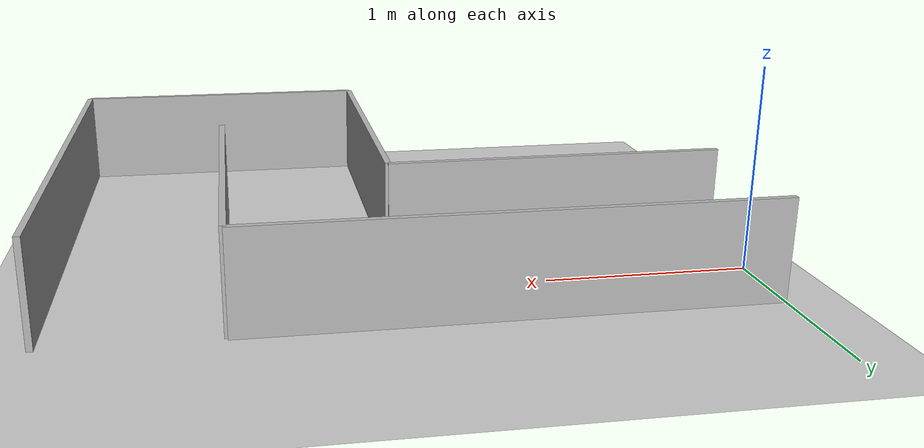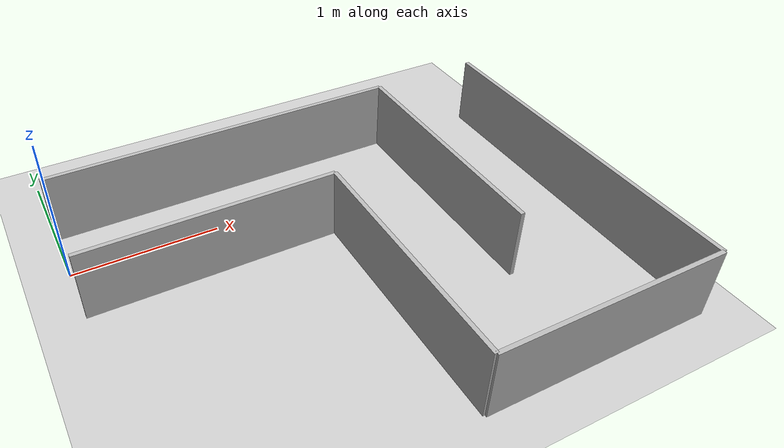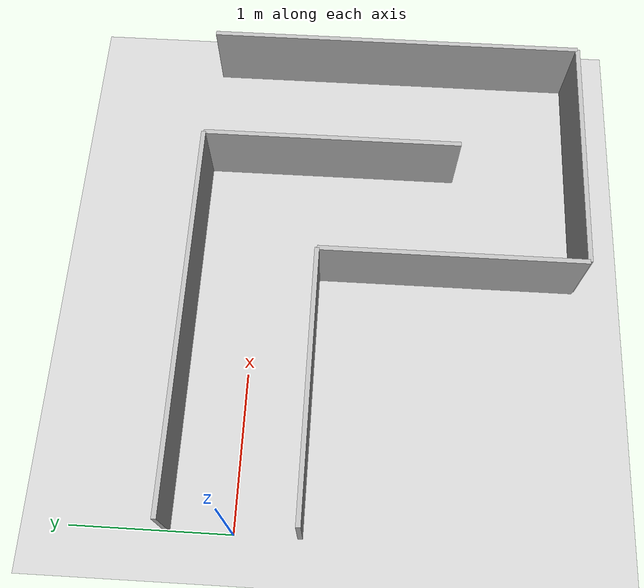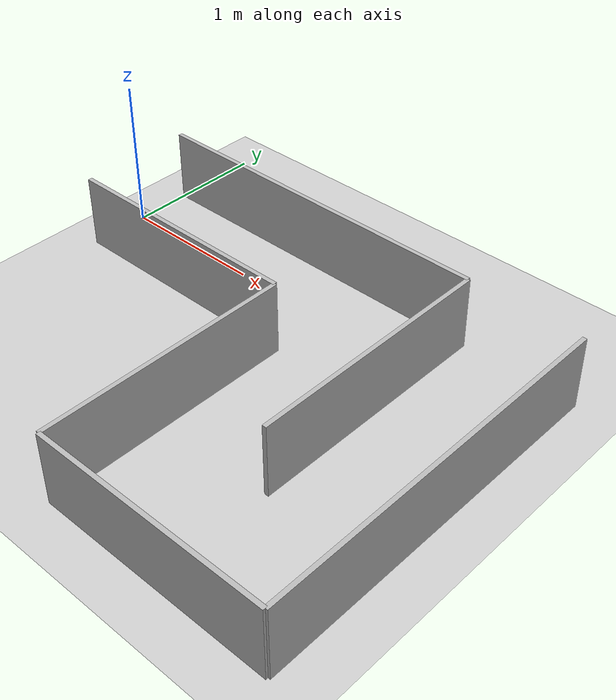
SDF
<?xml version="1.0" ?>
<sdf version="1.4">
    <world name="iitm_mini_project_nav_world">
        <include>
            <uri>model://ground_plane</uri>
        </include>

        <include>
            <uri>model://sun</uri>
        </include>

	<model name="walls">
		<static>true</static>
		<link name="wall_1">
			<pose>1.25 0.4 0.25 0 0 0</pose>
			<collision name="wall">
				<geometry>
					<box>
						<size>2.5 0.03 0.5</size>
					</box>
				</geometry>
			</collision>

			<visual name="visual">
				<geometry>
					<box>
						<size>2.5 0.03 0.5</size>
					</box>
				</geometry>
			</visual>
		</link>

		<link name="wall_2">
			<pose>0.85 -0.4 0.25 0 0 0</pose>
			<collision name="wall">
				<geometry>
					<box>
						<size>1.7 0.03 0.5</size>
					</box>
				</geometry>
			</collision>

			<visual name="visual">
				<geometry>
					<box>
						<size>1.7 0.03 0.5</size>
					</box>
				</geometry>
			</visual>
		</link>

		<link name="wall_3">
			<pose>2.5 -0.45 0.25 0 0 0</pose>
			<collision name="wall">
				<geometry>
					<box>
						<size>0.03 1.7 0.5</size>
					</box>
				</geometry>
			</collision>

			<visual name="visual">
				<geometry>
					<box>
						<size>0.03 1.7 0.5</size>
					</box>
				</geometry>
			</visual>
		</link>

		<link name="wall_4">
			<pose>1.7 -1.25 0.25 0 0 0</pose>
			<collision name="wall">
				<geometry>
					<box>
						<size>0.03 1.7 0.5</size>
					</box>
				</geometry>
			</collision>

			<visual name="visual">
				<geometry>
					<box>
						<size>0.03 1.7 0.5</size>
					</box>
				</geometry>
			</visual>
		</link>

		<link name="wall_5">
			<pose>2.5 -2.1 0.25 0 0 0</pose>
			<collision name="wall">
				<geometry>
					<box>
						<size>1.6 0.03 0.5</size>
					</box>
				</geometry>
			</collision>

			<visual name="visual">
				<geometry>
					<box>
						<size>1.6 0.03 0.5</size>
					</box>
				</geometry>
			</visual>
		</link>

		<link name="wall_6">
			<pose>3.3 -0.85 0.25 0 0 0</pose>
			<collision name="wall">
				<geometry>
					<box>
						<size>0.03 2.5 0.5</size>
					</box>
				</geometry>
			</collision>

			<visual name="visual">
				<geometry>
					<box>
						<size>0.03 2.5 0.5</size>
					</box>
				</geometry>
			</visual>
		</link>
	</model>

    </world>
</sdf>
